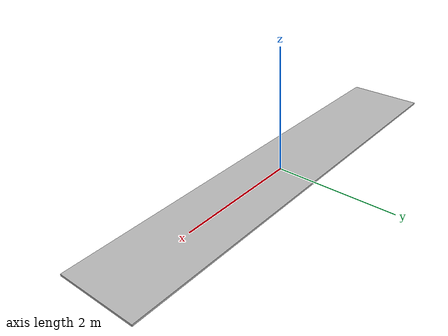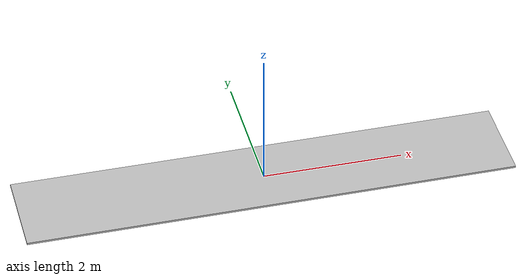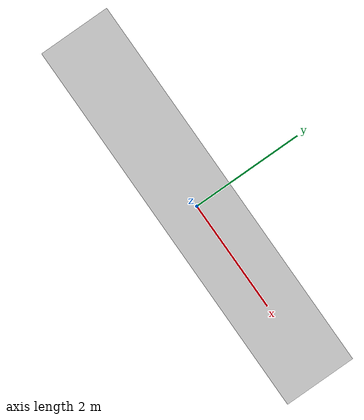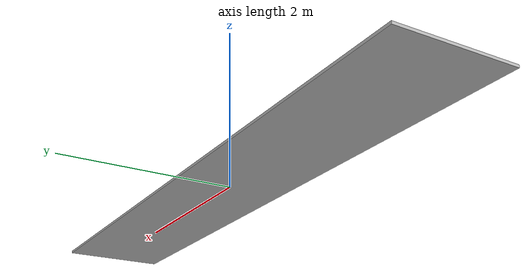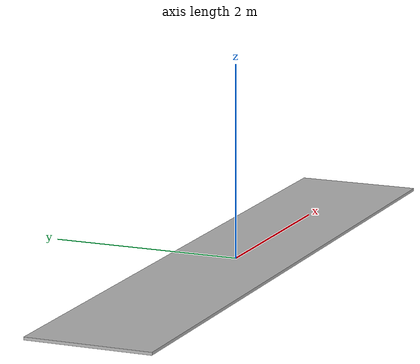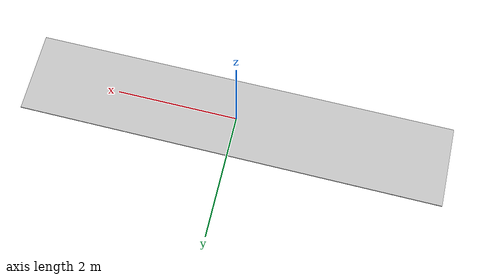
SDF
<?xml version="1.0" ?>
<sdf version="1.5">
  <model name="aisle_7m">
    <static>true</static>
    <link name="link">
      <pose>0 0 0.01 0 0 0</pose>
      <collision name="aisle_7mC">
        <geometry>
          <box>
            <size>7.0 1.3 0.03</size>
          </box>
        </geometry>
      </collision>
      <visual name="visual">
        <cast_shadows>false</cast_shadows>
        <geometry>
          <box>
            <size>7.0 1.3 0.03</size>
          </box>
        </geometry>
        <material>
          <script>
            <uri>model://aisle_7m/materials/scripts</uri>
            <uri>model://aisle_7m/materials/textures</uri>
            <name>vrc/aisle_7m</name>
          </script>
        </material>
      </visual>
    </link>
  </model>
</sdf>
